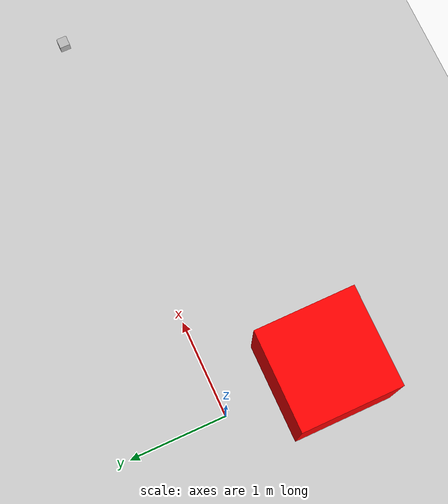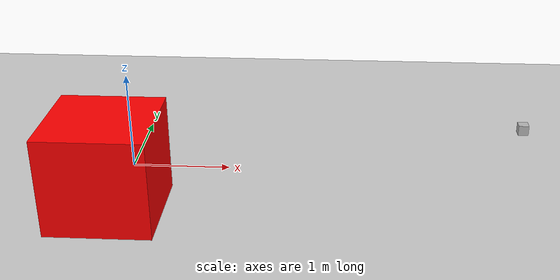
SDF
<?xml version="1.0" ?>
<!--
  Demo world with a widget displaying images coming from a depth camera sensor.
-->
<sdf version="1.6">
  <world name="depth_camera_sensor">
    <physics name="1ms" type="ignored">
      <max_step_size>0.001</max_step_size>
      <real_time_factor>1.0</real_time_factor>
    </physics>
    <plugin
      filename="gz-sim-physics-system"
      name="gz::sim::systems::Physics">
    </plugin>
    <plugin
      filename="gz-sim-sensors-system"
      name="gz::sim::systems::Sensors">
      <render_engine>ogre2</render_engine>
    </plugin>
    <plugin
      filename="gz-sim-scene-broadcaster-system"
      name="gz::sim::systems::SceneBroadcaster">
    </plugin>

    <gui fullscreen="0">

      <!-- 3D scene -->
      <plugin filename="MinimalScene" name="3D View">
        <gz-gui>
          <title>3D View</title>
          <property type="bool" key="showTitleBar">false</property>
          <property type="string" key="state">docked</property>
        </gz-gui>

        <engine>ogre2</engine>
        <scene>scene</scene>
        <ambient_light>0.4 0.4 0.4</ambient_light>
        <background_color>0.8 0.8 0.8</background_color>
        <camera_pose>-6 0 6 0 0.5 0</camera_pose>
      </plugin>

      <!-- Plugins that add functionality to the scene -->
      <plugin filename="EntityContextMenuPlugin" name="Entity context menu">
        <gz-gui>
          <property key="state" type="string">floating</property>
          <property key="width" type="double">5</property>
          <property key="height" type="double">5</property>
          <property key="showTitleBar" type="bool">false</property>
        </gz-gui>
      </plugin>
      <plugin filename="GzSceneManager" name="Scene Manager">
        <gz-gui>
          <property key="resizable" type="bool">false</property>
          <property key="width" type="double">5</property>
          <property key="height" type="double">5</property>
          <property key="state" type="string">floating</property>
          <property key="showTitleBar" type="bool">false</property>
        </gz-gui>
      </plugin>
      <plugin filename="InteractiveViewControl" name="Interactive view control">
        <gz-gui>
          <property key="resizable" type="bool">false</property>
          <property key="width" type="double">5</property>
          <property key="height" type="double">5</property>
          <property key="state" type="string">floating</property>
          <property key="showTitleBar" type="bool">false</property>
        </gz-gui>
      </plugin>
      <plugin filename="CameraTracking" name="Camera Tracking">
        <gz-gui>
          <property key="resizable" type="bool">false</property>
          <property key="width" type="double">5</property>
          <property key="height" type="double">5</property>
          <property key="state" type="string">floating</property>
          <property key="showTitleBar" type="bool">false</property>
        </gz-gui>
      </plugin>
      <!-- World control -->
      <plugin filename="WorldControl" name="World control">
        <gz-gui>
          <title>World control</title>
          <property type="bool" key="showTitleBar">false</property>
          <property type="bool" key="resizable">false</property>
          <property type="double" key="height">72</property>
          <property type="double" key="z">1</property>

          <property type="string" key="state">floating</property>
          <anchors target="3D View">
            <line own="left" target="left"/>
            <line own="bottom" target="bottom"/>
          </anchors>
        </gz-gui>

        <play_pause>true</play_pause>
        <step>true</step>
        <start_paused>true</start_paused>
        <use_event>true</use_event>
      </plugin>

      <plugin filename="ImageDisplay" name="Image Display">
        <gz-gui>
          <property key="state" type="string">docked</property>
        </gz-gui>
        <topic>depth_camera</topic>
      </plugin>
    </gui>

    <light type="directional" name="sun">
      <cast_shadows>true</cast_shadows>
      <pose>0 0 10 0 0 0</pose>
      <diffuse>0.8 0.8 0.8 1</diffuse>
      <specular>0.2 0.2 0.2 1</specular>
      <attenuation>
        <range>1000</range>
        <constant>0.9</constant>
        <linear>0.01</linear>
        <quadratic>0.001</quadratic>
      </attenuation>
      <direction>-0.5 0.1 -0.9</direction>
    </light>

    <model name="ground_plane">
      <static>true</static>
      <link name="link">
        <collision name="collision">
          <geometry>
            <box>
              <size>20 20 0.1</size>
            </box>
          </geometry>
        </collision>
        <visual name="visual">
          <geometry>
            <box>
              <size>20 20 0.1</size>
            </box>
          </geometry>
          <material>
            <ambient>0.8 0.8 0.8 1</ambient>
            <diffuse>0.8 0.8 0.8 1</diffuse>
            <specular>0.8 0.8 0.8 1</specular>
          </material>
        </visual>
      </link>
    </model>

    <model name="box">
      <pose>0 -1 0.5 0 0 0</pose>
      <link name="box_link">
        <inertial>
          <inertia>
            <ixx>1</ixx>
            <ixy>0</ixy>
            <ixz>0</ixz>
            <iyy>1</iyy>
            <iyz>0</iyz>
            <izz>1</izz>
          </inertia>
          <mass>1.0</mass>
        </inertial>
        <collision name="box_collision">
          <geometry>
            <box>
              <size>1 1 1</size>
            </box>
          </geometry>
        </collision>

        <visual name="box_visual">
          <geometry>
            <box>
              <size>1 1 1</size>
            </box>
          </geometry>
          <material>
            <ambient>1 0 0 1</ambient>
            <diffuse>1 0 0 1</diffuse>
            <specular>1 0 0 1</specular>
          </material>
        </visual>
      </link>
    </model>

    <model name="depth_camera">
      <pose>4 0 0.5 0 0.0 3.14</pose>
      <link name="link">
        <pose>0.05 0.05 0.05 0 0 0</pose>
        <inertial>
          <mass>0.1</mass>
          <inertia>
            <ixx>0.000166667</ixx>
            <iyy>0.000166667</iyy>
            <izz>0.000166667</izz>
          </inertia>
        </inertial>
        <collision name="collision">
          <geometry>
            <box>
              <size>0.1 0.1 0.1</size>
            </box>
          </geometry>
        </collision>
        <visual name="visual">
          <geometry>
            <box>
              <size>0.1 0.1 0.1</size>
            </box>
          </geometry>
        </visual>
        <sensor name="depth_camera1" type="depth_camera">
          <update_rate>10</update_rate>
          <topic>depth_camera</topic>
          <camera>
            <horizontal_fov>1.05</horizontal_fov>
            <image>
              <width>256</width>
              <height>256</height>
              <format>R_FLOAT32</format>
            </image>
            <clip>
              <near>0.1</near>
              <far>10.0</far>
            </clip>
          </camera>
          </sensor>
      </link>
      <static>true</static>
    </model>

  </world>
</sdf>
